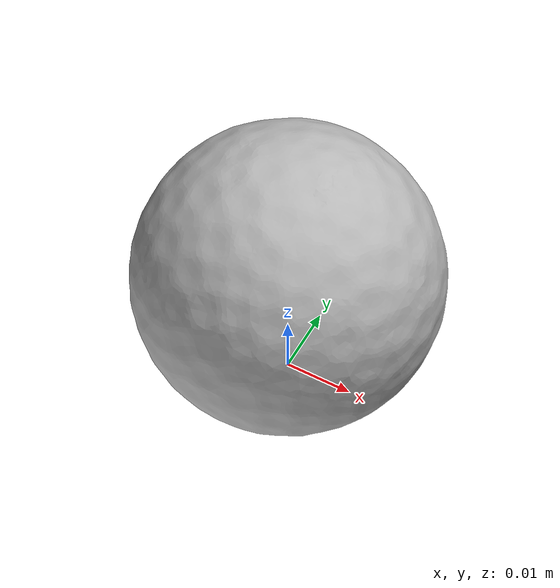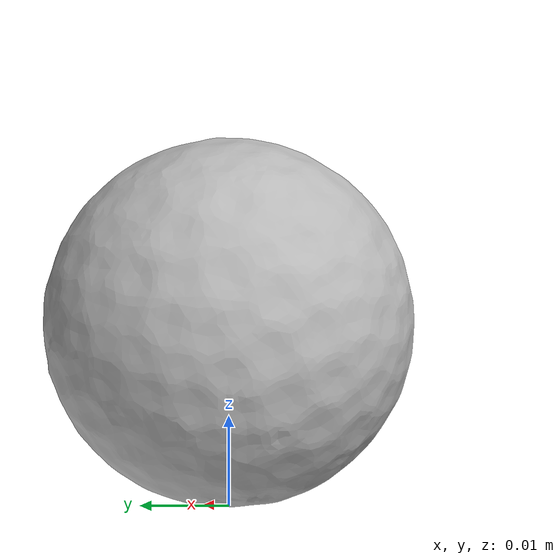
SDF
<?xml version="1.0" ?>
<sdf version='1.8'>
  <model name='ycb_058_golf_ball'>
    <link name='body'>
      <inertial>
        <mass>0.046</mass>
        <pose>4.71414398e-05 1.77029046e-05 0.0210145301 0 0 0</pose>
        <inertia>
          <ixx>8.30912102664e-06</ixx>
          <ixy>-8.04696433085e-10</ixy>
          <ixz>1.09164678613e-09</ixz>
          <iyy>8.31517367441e-06</iyy>
          <iyz>-1.99520248051e-09</iyz>
          <izz>8.33839495435e-06</izz>
        </inertia>
      </inertial>
      <visual name='ycb_058_golf_ball_visual'>
        <pose>0.006576 0.030435 8.8e-05 0 0 0</pose>
        <geometry>
          <mesh>
            <uri>model://ycb_058_golf_ball/meshes/textured.dae</uri>
          </mesh>
        </geometry>
      </visual>
      <collision name='ycb_058_golf_ball_collision'>
        <pose>0.006576 0.030435 8.8e-05 0 0 0</pose>
        <geometry>
          <mesh>
            <uri>model://ycb_058_golf_ball/meshes/nontextured.stl</uri>
          </mesh>
        </geometry>
        <max_contacts>10</max_contacts>
        <surface>
          <contact>
            <ode>
              <kp>1e15</kp>
              <kd>1e13</kd>
            </ode>
          </contact>
        </surface>
      </collision>
    </link>
  </model>
</sdf>
